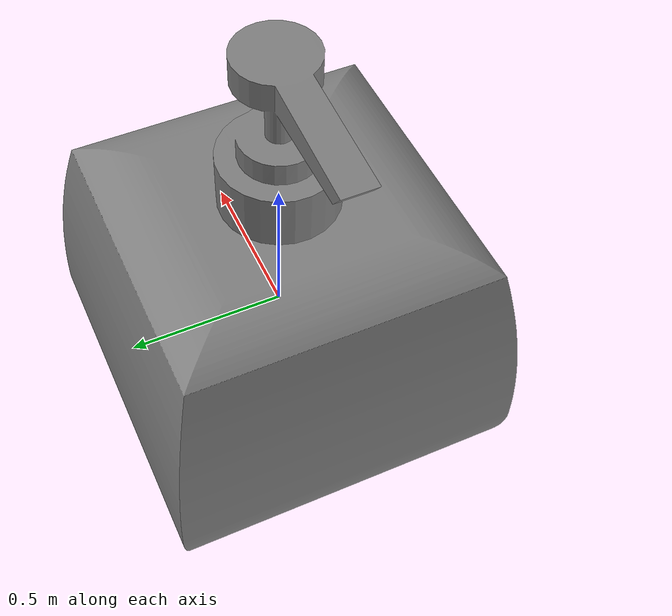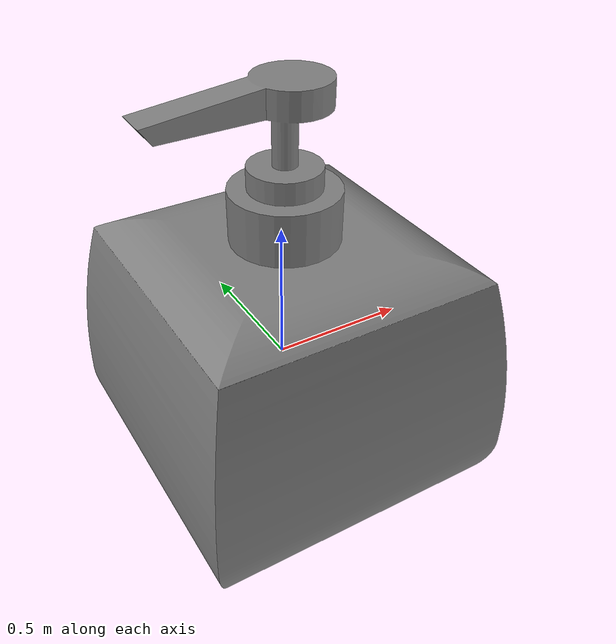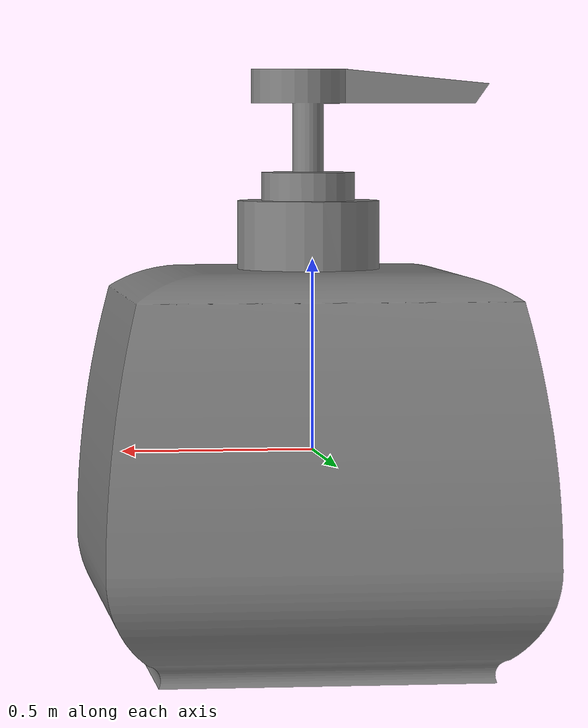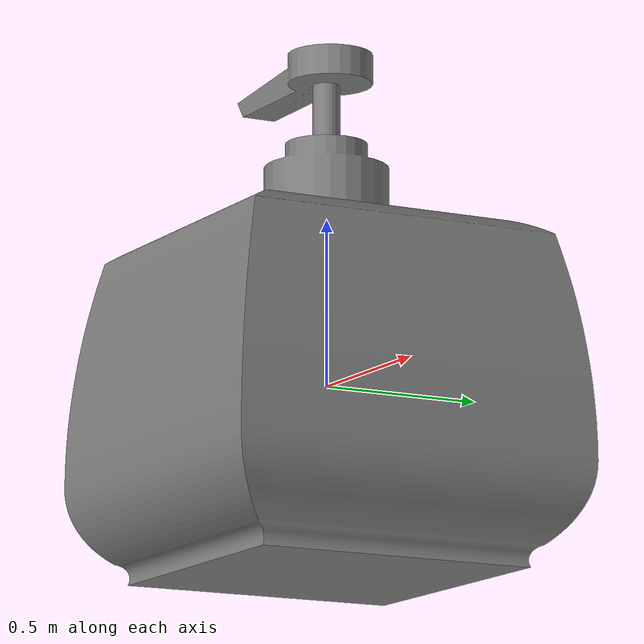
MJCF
<?xml version='1.0' encoding='UTF-8'?>
<mujoco model="partnet_af3763054969179d5a539e595e9e07ce">
  <compiler angle="radian"/>
  <asset>
    <mesh name="original_3" content_type="model/obj" file="textured_objs/original_3.obj"/>
    <mesh name="original_2" content_type="model/obj" file="textured_objs/original_2.obj"/>
    <mesh name="original_1" content_type="model/obj" file="textured_objs/original_1.obj"/>
  </asset>
  <worldbody>
    <body name="base">
      <body name="link_2" quat="0.5 0.5 -0.5 -0.5">
        <geom type="mesh" mesh="original_1"/>
        <body name="link_1_helper" pos="0.00582819 0 -0.0100718">
          <inertial pos="0 0 0" mass="1e-06" diaginertia="1e-10 1e-10 1e-10"/>
          <joint name="joint_4" pos="0 0 0" axis="0 1 0" type="slide" range="0 0.02"/>
          <body name="link_1">
            <joint name="joint_1" pos="0 0 0" axis="0 1 0"/>
            <geom pos="-0.00582819 0 0.0100718" quat="1 0 0 0" type="mesh" mesh="original_2"/>
            <body name="link_0_helper" pos="0 0 0">
              <inertial pos="0 0 0" mass="1e-06" diaginertia="1e-10 1e-10 1e-10"/>
              <joint name="joint_3" pos="0 0 0" axis="0 -1 0" type="slide" range="0 0.175"/>
              <body name="link_0">
                <joint name="joint_0" pos="0 0 0" axis="0 1 0"/>
                <geom pos="-0.00582819 0 0.0100718" type="mesh" mesh="original_3"/>
              </body>
            </body>
          </body>
        </body>
      </body>
    </body>
  </worldbody>
</mujoco>
